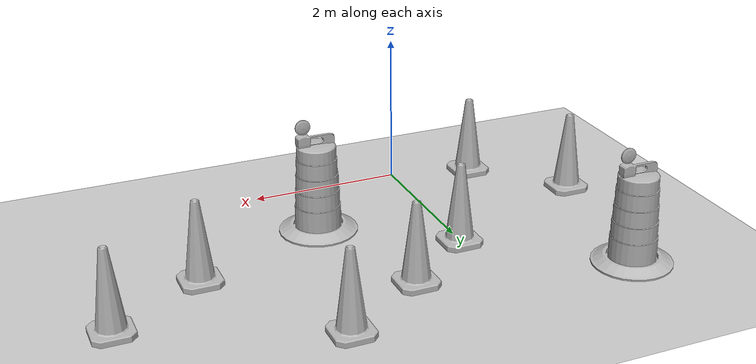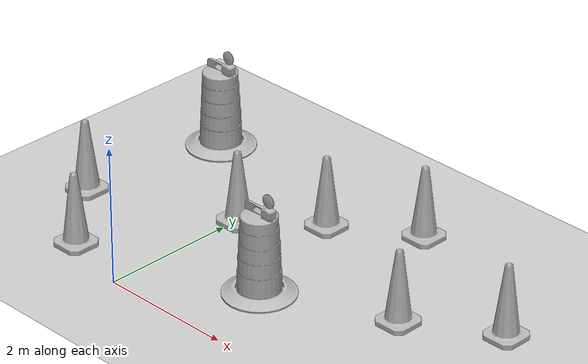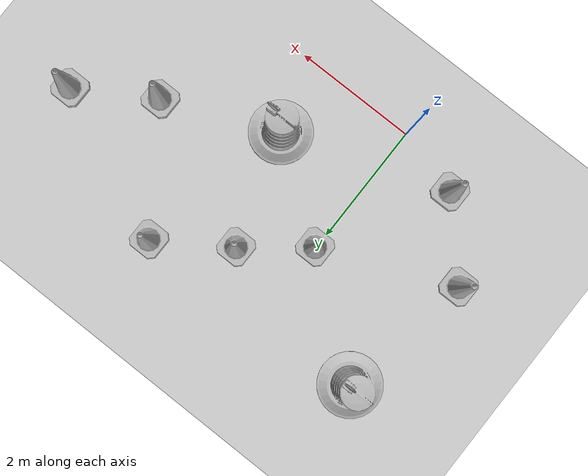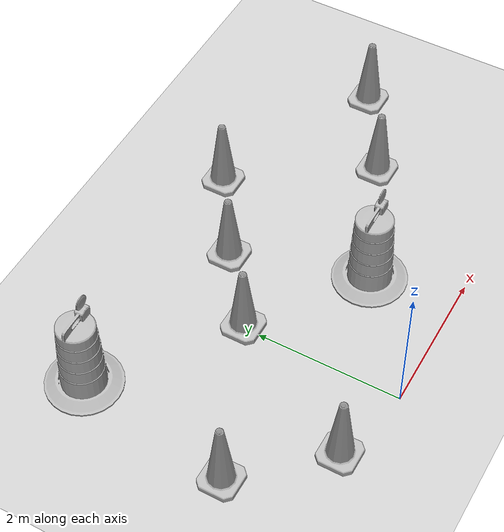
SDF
<sdf version="1.7">
 <world name="default">
  <light name="sun" type="directional">
   <pose>0 0 10 0 -0 0</pose>
   <diffuse>0.8 0.8 0.8 1</diffuse>
   <specular>0.2 0.2 0.2 1</specular>
   <attenuation>
    <range>1000</range>
    <constant>0.9</constant>
    <linear>0.01</linear>
    <quadratic>0.001</quadratic>
   </attenuation>
   <direction>-0.5 0.1 -0.9</direction>
   <spot><inner_angle>0</inner_angle><outer_angle>0</outer_angle><falloff>0</falloff></spot>
  </light>
  <model name="ground_plane">
   <static>1</static>
   <link name="link">
    <collision name="collision">
     <geometry><plane><normal>0 0 1</normal><size>100 100</size></plane></geometry>
     <surface>
      <contact><collide_bitmask>65535</collide_bitmask></contact>
      <friction><ode><mu>100</mu><mu2>50</mu2></ode></friction>
     </surface>
    </collision>
    <visual name="visual">
     <cast_shadows>0</cast_shadows>
     <geometry><plane><normal>0 0 1</normal><size>100 100</size></plane></geometry>
     <material>
      <script><uri>file://media/materials/scripts/gazebo.material</uri><name>Gazebo/Grey</name></script>
     </material>
    </visual>
   </link>
  </model>
  <gravity>0 0 -9.8</gravity>
  <magnetic_field>6e-06 2.3e-05 -4.2e-05</magnetic_field>
  <atmosphere type="adiabatic"/>
  <physics type="ode">
   <max_step_size>0.001</max_step_size>
   <real_time_factor>1</real_time_factor>
   <real_time_update_rate>1000</real_time_update_rate>
  </physics>
  <scene><ambient>0.4 0.4 0.4 1</ambient><background>0.7 0.7 0.7 1</background><shadows>1</shadows></scene>
  <audio><device>default</device></audio>
  <spherical_coordinates>
   <surface_model>EARTH_WGS84</surface_model>
   <latitude_deg>0</latitude_deg>
   <longitude_deg>0</longitude_deg>
   <elevation>0</elevation>
   <heading_deg>0</heading_deg>
  </spherical_coordinates>
  <model name="Construction Barrel">
   <link name="link">
    <inertial>
     <pose>0 0 0.4 0 -0 0</pose>
     <mass>500</mass>
     <inertia><ixx>51.2096</ixx><iyy>51.2096</iyy><izz>25</izz><ixy>0</ixy><ixz>0</ixz><iyz>0</iyz></inertia>
    </inertial>
    <collision name="collision">
     <geometry><mesh><uri>model://construction_barrel/meshes/construction_barrel.dae</uri></mesh></geometry>
    </collision>
    <visual name="visual">
     <geometry><mesh><uri>model://construction_barrel/meshes/construction_barrel.dae</uri></mesh></geometry>
    </visual>
   </link>
   <pose>-1.68855 3.56169 0 0 0 -2.5e-05</pose>
  </model>
  <model name="Construction Cone">
   <link name="link">
    <collision name="collision">
     <geometry>
      <mesh><scale>10 10 10</scale><uri>model://construction_cone/meshes/construction_cone.dae</uri></mesh>
     </geometry>
    </collision>
    <visual name="visual">
     <geometry>
      <mesh><scale>10 10 10</scale><uri>model://construction_cone/meshes/construction_cone.dae</uri></mesh>
     </geometry>
    </visual>
    <inertial>
     <inertia><ixx>1</ixx><ixy>0</ixy><ixz>0</ixz><iyy>1</iyy><iyz>0</iyz><izz>1</izz></inertia>
     <mass>1</mass>
    </inertial>
   </link>
   <pose>-2.06629 1.36234 -0 0 -0 0</pose>
  </model>
  <model name="Construction Cone_0">
   <link name="link">
    <collision name="collision">
     <geometry>
      <mesh><scale>10 10 10</scale><uri>model://construction_cone/meshes/construction_cone.dae</uri></mesh>
     </geometry>
    </collision>
    <visual name="visual">
     <geometry>
      <mesh><scale>10 10 10</scale><uri>model://construction_cone/meshes/construction_cone.dae</uri></mesh>
     </geometry>
    </visual>
    <inertial>
     <inertia><ixx>1</ixx><ixy>0</ixy><ixz>0</ixz><iyy>1</iyy><iyz>0</iyz><izz>1</izz></inertia>
     <mass>1</mass>
    </inertial>
   </link>
   <pose>-1.0725 0.290011 -0 0 -0 0</pose>
  </model>
  <model name="Construction Barrel_0">
   <link name="link">
    <inertial>
     <pose>0 0 0.4 0 -0 0</pose>
     <mass>500</mass>
     <inertia><ixx>51.2096</ixx><iyy>51.2096</iyy><izz>25</izz><ixy>0</ixy><ixz>0</ixz><iyz>0</iyz></inertia>
    </inertial>
    <collision name="collision">
     <geometry><mesh><uri>model://construction_barrel/meshes/construction_barrel.dae</uri></mesh></geometry>
    </collision>
    <visual name="visual">
     <geometry><mesh><uri>model://construction_barrel/meshes/construction_barrel.dae</uri></mesh></geometry>
    </visual>
   </link>
   <pose>1.53916 1.17897 -0 0 -0 -2e-05</pose>
  </model>
  <model name="Construction Cone_1">
   <link name="link">
    <collision name="collision">
     <geometry>
      <mesh><scale>10 10 10</scale><uri>model://construction_cone/meshes/construction_cone.dae</uri></mesh>
     </geometry>
    </collision>
    <visual name="visual">
     <geometry>
      <mesh><scale>10 10 10</scale><uri>model://construction_cone/meshes/construction_cone.dae</uri></mesh>
     </geometry>
    </visual>
    <inertial>
     <inertia><ixx>1</ixx><ixy>0</ixy><ixz>0</ixz><iyy>1</iyy><iyz>0</iyz><izz>1</izz></inertia>
     <mass>1</mass>
    </inertial>
   </link>
   <pose>0.026152 2.24485 -0 0 -0 0</pose>
  </model>
  <model name="Construction Cone_2">
   <link name="link">
    <collision name="collision">
     <geometry>
      <mesh><scale>10 10 10</scale><uri>model://construction_cone/meshes/construction_cone.dae</uri></mesh>
     </geometry>
    </collision>
    <visual name="visual">
     <geometry>
      <mesh><scale>10 10 10</scale><uri>model://construction_cone/meshes/construction_cone.dae</uri></mesh>
     </geometry>
    </visual>
    <inertial>
     <inertia><ixx>1</ixx><ixy>0</ixy><ixz>0</ixz><iyy>1</iyy><iyz>0</iyz><izz>1</izz></inertia>
     <mass>1</mass>
    </inertial>
   </link>
   <pose>0.970446 2.99607 -0 0 -0 0</pose>
  </model>
  <model name="Construction Cone_3">
   <link name="link">
    <collision name="collision">
     <geometry>
      <mesh><scale>10 10 10</scale><uri>model://construction_cone/meshes/construction_cone.dae</uri></mesh>
     </geometry>
    </collision>
    <visual name="visual">
     <geometry>
      <mesh><scale>10 10 10</scale><uri>model://construction_cone/meshes/construction_cone.dae</uri></mesh>
     </geometry>
    </visual>
    <inertial>
     <inertia><ixx>1</ixx><ixy>0</ixy><ixz>0</ixz><iyy>1</iyy><iyz>0</iyz><izz>1</izz></inertia>
     <mass>1</mass>
    </inertial>
   </link>
   <pose>3.31444 1.93508 -0 1e-06 -0 0</pose>
  </model>
  <model name="Construction Cone_4">
   <link name="link">
    <collision name="collision">
     <geometry>
      <mesh><scale>10 10 10</scale><uri>model://construction_cone/meshes/construction_cone.dae</uri></mesh>
     </geometry>
    </collision>
    <visual name="visual">
     <geometry>
      <mesh><scale>10 10 10</scale><uri>model://construction_cone/meshes/construction_cone.dae</uri></mesh>
     </geometry>
    </visual>
    <inertial>
     <inertia><ixx>1</ixx><ixy>0</ixy><ixz>0</ixz><iyy>1</iyy><iyz>0</iyz><izz>1</izz></inertia>
     <mass>1</mass>
    </inertial>
   </link>
   <pose>4.51661 2.66567 -0 0 -0 0</pose>
  </model>
  <model name="Construction Cone_5">
   <link name="link">
    <collision name="collision">
     <geometry>
      <mesh><scale>10 10 10</scale><uri>model://construction_cone/meshes/construction_cone.dae</uri></mesh>
     </geometry>
    </collision>
    <visual name="visual">
     <geometry>
      <mesh><scale>10 10 10</scale><uri>model://construction_cone/meshes/construction_cone.dae</uri></mesh>
     </geometry>
    </visual>
    <inertial>
     <inertia><ixx>1</ixx><ixy>0</ixy><ixz>0</ixz><iyy>1</iyy><iyz>0</iyz><izz>1</izz></inertia>
     <mass>1</mass>
    </inertial>
   </link>
   <pose>2.08805 3.73223 -0 0 -0 0</pose>
  </model>
 </world>
</sdf>
